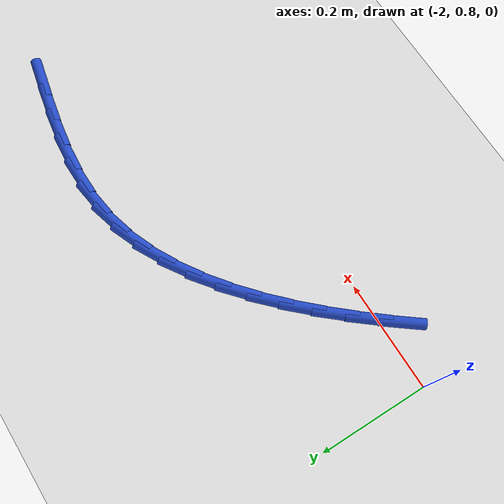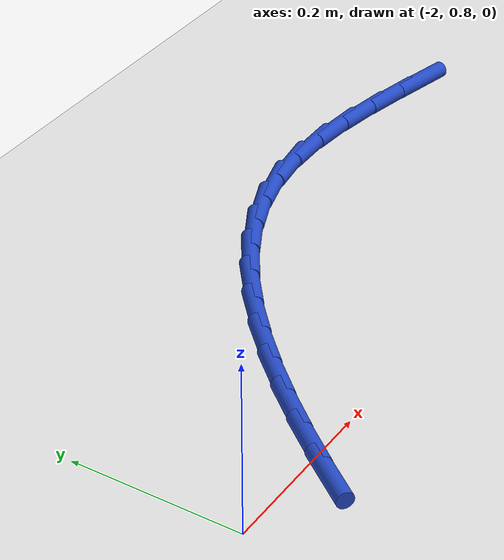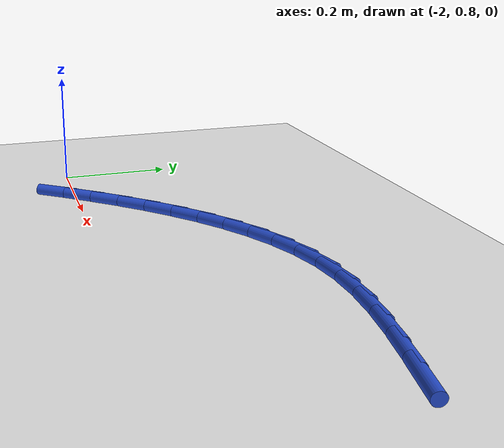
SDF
<sdf version="1.6">
 <world name="default">
  <model name="ground_plane">
   <static>1</static>
   <link name="link">
    <collision name="collision">
     <geometry><plane><normal>0 0 1</normal><size>100 100</size></plane></geometry>
     <surface><friction><ode><mu>100</mu><mu2>50</mu2></ode></friction></surface>
    </collision>
    <visual name="visual">
     <cast_shadows>0</cast_shadows>
     <geometry><plane><normal>0 0 1</normal><size>100 100</size></plane></geometry>
     <material>
      <script><uri>file://media/materials/scripts/gazebo.material</uri><name>Gazebo/WhiteGlow</name></script>
     </material>
    </visual>
   </link>
  </model>
  <model name="line">
   <link name="link_33">
    <pose>-1.1685562013295125 1.0690158403701449 0.01 0 1.57 -0.2173739485153805</pose>
    <collision name="collision">
     <geometry><cylinder><radius>0.01</radius><length>0.08</length></cylinder></geometry>
    </collision>
    <visual name="visual">
     <material>
      <script><name>Gazebo/Blue</name><uri>file://media/materials/scripts/gazebo.material</uri></script>
     </material>
     <geometry><cylinder><radius>0.01</radius><length>0.08</length></cylinder></geometry>
    </visual>
   </link>
   <link name="link_34">
    <pose>-1.2216605806269507 1.080744668186985 0.01 0 1.57 -0.1925295021691556</pose>
    <collision name="collision">
     <geometry><cylinder><radius>0.01</radius><length>0.08</length></cylinder></geometry>
    </collision>
    <visual name="visual">
     <material>
      <script><name>Gazebo/Blue</name><uri>file://media/materials/scripts/gazebo.material</uri></script>
     </material>
     <geometry><cylinder><radius>0.01</radius><length>0.08</length></cylinder></geometry>
    </visual>
   </link>
   <link name="link_35">
    <pose>-1.2744309309391537 1.0910319408827194 0.01 0 1.57 -0.14584913769349828</pose>
    <collision name="collision">
     <geometry><cylinder><radius>0.01</radius><length>0.08</length></cylinder></geometry>
    </collision>
    <visual name="visual">
     <material>
      <script><name>Gazebo/Blue</name><uri>file://media/materials/scripts/gazebo.material</uri></script>
     </material>
     <geometry><cylinder><radius>0.01</radius><length>0.08</length></cylinder></geometry>
    </visual>
   </link>
   <link name="link_36">
    <pose>-1.3266466819649638 1.0987020263721314 0.01 0 1.57 -0.07523143243276617</pose>
    <collision name="collision">
     <geometry><cylinder><radius>0.01</radius><length>0.08</length></cylinder></geometry>
    </collision>
    <visual name="visual">
     <material>
      <script><name>Gazebo/Blue</name><uri>file://media/materials/scripts/gazebo.material</uri></script>
     </material>
     <geometry><cylinder><radius>0.01</radius><length>0.08</length></cylinder></geometry>
    </visual>
   </link>
   <link name="link_37">
    <pose>-1.3780872634032244 1.102579292570005 0.01 0 1.57 0.02162788107885566</pose>
    <collision name="collision">
     <geometry><cylinder><radius>0.01</radius><length>0.08</length></cylinder></geometry>
    </collision>
    <visual name="visual">
     <material>
      <script><name>Gazebo/Blue</name><uri>file://media/materials/scripts/gazebo.material</uri></script>
     </material>
     <geometry><cylinder><radius>0.01</radius><length>0.08</length></cylinder></geometry>
    </visual>
   </link>
   <link name="link_38">
    <pose>-1.4285321049527782 1.1014881073911247 0.01 0 1.57 0.14520633551745582</pose>
    <collision name="collision">
     <geometry><cylinder><radius>0.01</radius><length>0.08</length></cylinder></geometry>
    </collision>
    <visual name="visual">
     <material>
      <script><name>Gazebo/Blue</name><uri>file://media/materials/scripts/gazebo.material</uri></script>
     </material>
     <geometry><cylinder><radius>0.01</radius><length>0.08</length></cylinder></geometry>
    </visual>
   </link>
   <link name="link_39">
    <pose>-1.477764672737772 1.0942885547974992 0.01 0 1.57 0.2766481867427419</pose>
    <collision name="collision">
     <geometry><cylinder><radius>0.01</radius><length>0.08</length></cylinder></geometry>
    </collision>
    <visual name="visual">
     <material>
      <script><name>Gazebo/Blue</name><uri>file://media/materials/scripts/gazebo.material</uri></script>
     </material>
     <geometry><cylinder><radius>0.01</radius><length>0.08</length></cylinder></geometry>
    </visual>
   </link>
   <link name="link_40">
    <pose>-1.525664242672508 1.080688485458531 0.01 0 1.57 0.3954689950242262</pose>
    <collision name="collision">
     <geometry><cylinder><radius>0.01</radius><length>0.08</length></cylinder></geometry>
    </collision>
    <visual name="visual">
     <material>
      <script><name>Gazebo/Blue</name><uri>file://media/materials/scripts/gazebo.material</uri></script>
     </material>
     <geometry><cylinder><radius>0.01</radius><length>0.08</length></cylinder></geometry>
    </visual>
   </link>
   <link name="link_41">
    <pose>-1.572207581254235 1.0612583891368752 0.01 0 1.57 0.4995807512190629</pose>
    <collision name="collision">
     <geometry><cylinder><radius>0.01</radius><length>0.08</length></cylinder></geometry>
    </collision>
    <visual name="visual">
     <material>
      <script><name>Gazebo/Blue</name><uri>file://media/materials/scripts/gazebo.material</uri></script>
     </material>
     <geometry><cylinder><radius>0.01</radius><length>0.08</length></cylinder></geometry>
    </visual>
   </link>
   <link name="link_42">
    <pose>-1.617375827595934 1.0366074464015982 0.01 0 1.57 0.5892627646320678</pose>
    <collision name="collision">
     <geometry><cylinder><radius>0.01</radius><length>0.08</length></cylinder></geometry>
    </collision>
    <visual name="visual">
     <material>
      <script><name>Gazebo/Blue</name><uri>file://media/materials/scripts/gazebo.material</uri></script>
     </material>
     <geometry><cylinder><radius>0.01</radius><length>0.08</length></cylinder></geometry>
    </visual>
   </link>
   <link name="link_43">
    <pose>-1.6611501208105852 1.0073448378217653 0.01 0 1.57 0.6656929457718003</pose>
    <collision name="collision">
     <geometry><cylinder><radius>0.01</radius><length>0.08</length></cylinder></geometry>
    </collision>
    <visual name="visual">
     <material>
      <script><name>Gazebo/Blue</name><uri>file://media/materials/scripts/gazebo.material</uri></script>
     </material>
     <geometry><cylinder><radius>0.01</radius><length>0.08</length></cylinder></geometry>
    </visual>
   </link>
   <link name="link_44">
    <pose>-1.703511600011171 0.974079743966444 0.01 0 1.57 0.7304014213512497</pose>
    <collision name="collision">
     <geometry><cylinder><radius>0.01</radius><length>0.08</length></cylinder></geometry>
    </collision>
    <visual name="visual">
     <material>
      <script><name>Gazebo/Blue</name><uri>file://media/materials/scripts/gazebo.material</uri></script>
     </material>
     <geometry><cylinder><radius>0.01</radius><length>0.08</length></cylinder></geometry>
    </visual>
   </link>
   <link name="link_45">
    <pose>-1.744441404310672 0.9374213454046998 0.01 0 1.57 0.7849325656318844</pose>
    <collision name="collision">
     <geometry><cylinder><radius>0.01</radius><length>0.08</length></cylinder></geometry>
    </collision>
    <visual name="visual">
     <material>
      <script><name>Gazebo/Blue</name><uri>file://media/materials/scripts/gazebo.material</uri></script>
     </material>
     <geometry><cylinder><radius>0.01</radius><length>0.08</length></cylinder></geometry>
    </visual>
   </link>
   <link name="link_46">
    <pose>-1.78392067282207 0.8979788227055989 0.01 0 1.57 0.8306731807260614</pose>
    <collision name="collision">
     <geometry><cylinder><radius>0.01</radius><length>0.08</length></cylinder></geometry>
    </collision>
    <visual name="visual">
     <material>
      <script><name>Gazebo/Blue</name><uri>file://media/materials/scripts/gazebo.material</uri></script>
     </material>
     <geometry><cylinder><radius>0.01</radius><length>0.08</length></cylinder></geometry>
    </visual>
   </link>
   <link name="link_47">
    <pose>-1.8219305446583451 0.8563613564382073 0.01 0 1.57 0.8687829126340074</pose>
    <collision name="collision">
     <geometry><cylinder><radius>0.01</radius><length>0.08</length></cylinder></geometry>
    </collision>
    <visual name="visual">
     <material>
      <script><name>Gazebo/Blue</name><uri>file://media/materials/scripts/gazebo.material</uri></script>
     </material>
     <geometry><cylinder><radius>0.01</radius><length>0.08</length></cylinder></geometry>
    </visual>
   </link>
   <link name="link_48">
    <pose>-1.8584521589324792 0.8131781271715919 0.01 0 1.57 0.9001766048739235</pose>
    <collision name="collision">
     <geometry><cylinder><radius>0.01</radius><length>0.08</length></cylinder></geometry>
    </collision>
    <visual name="visual">
     <material>
      <script><name>Gazebo/Blue</name><uri>file://media/materials/scripts/gazebo.material</uri></script>
     </material>
     <geometry><cylinder><radius>0.01</radius><length>0.08</length></cylinder></geometry>
    </visual>
   </link>
   <link name="link_49">
    <pose>-1.8934666547574537 0.7690383154748185 0.01 0 1.57 0.9255265423814842</pose>
    <collision name="collision">
     <geometry><cylinder><radius>0.01</radius><length>0.08</length></cylinder></geometry>
    </collision>
    <visual name="visual">
     <material>
      <script><name>Gazebo/Blue</name><uri>file://media/materials/scripts/gazebo.material</uri></script>
     </material>
     <geometry><cylinder><radius>0.01</radius><length>0.08</length></cylinder></geometry>
    </visual>
   </link>
  </model>
 </world>
</sdf>
